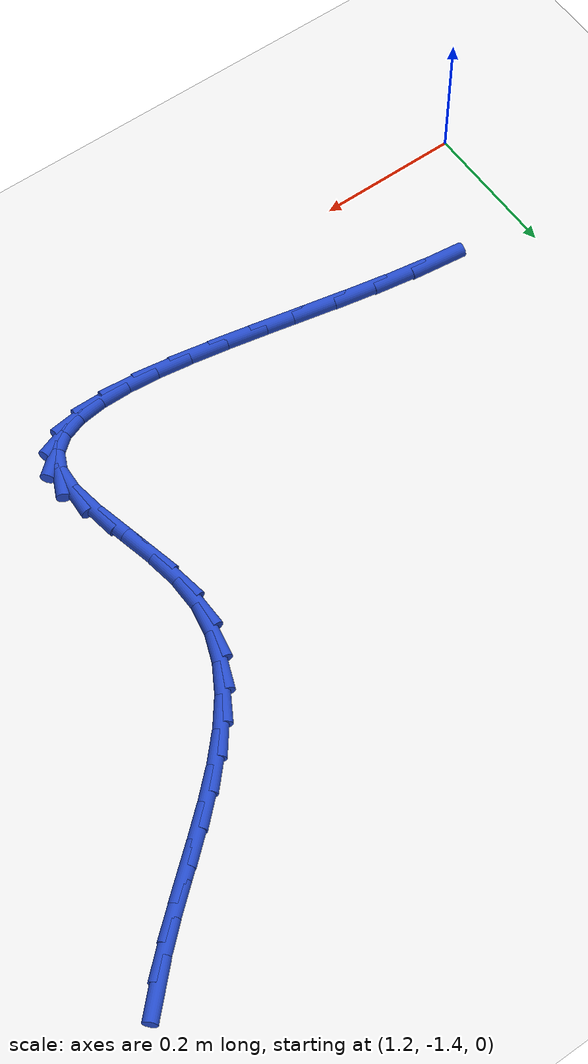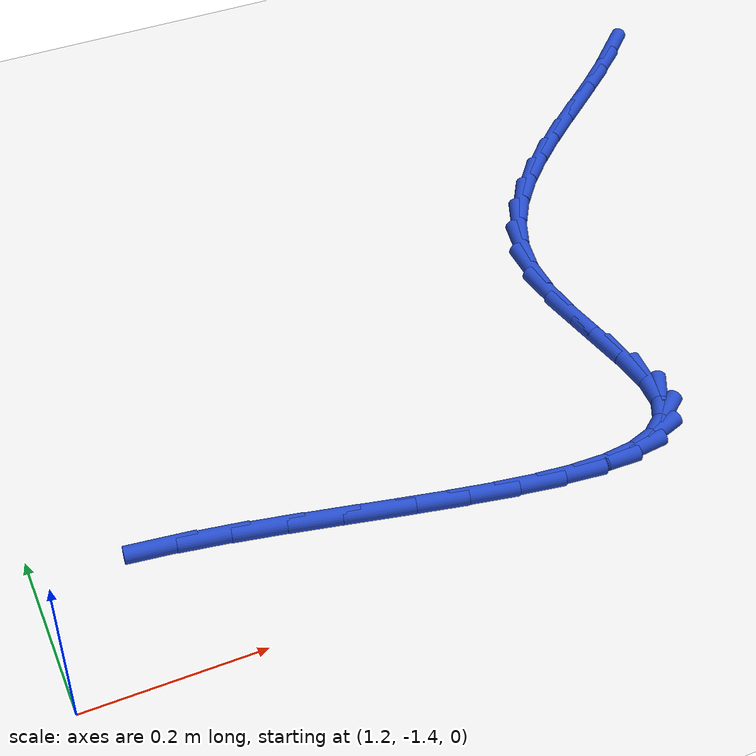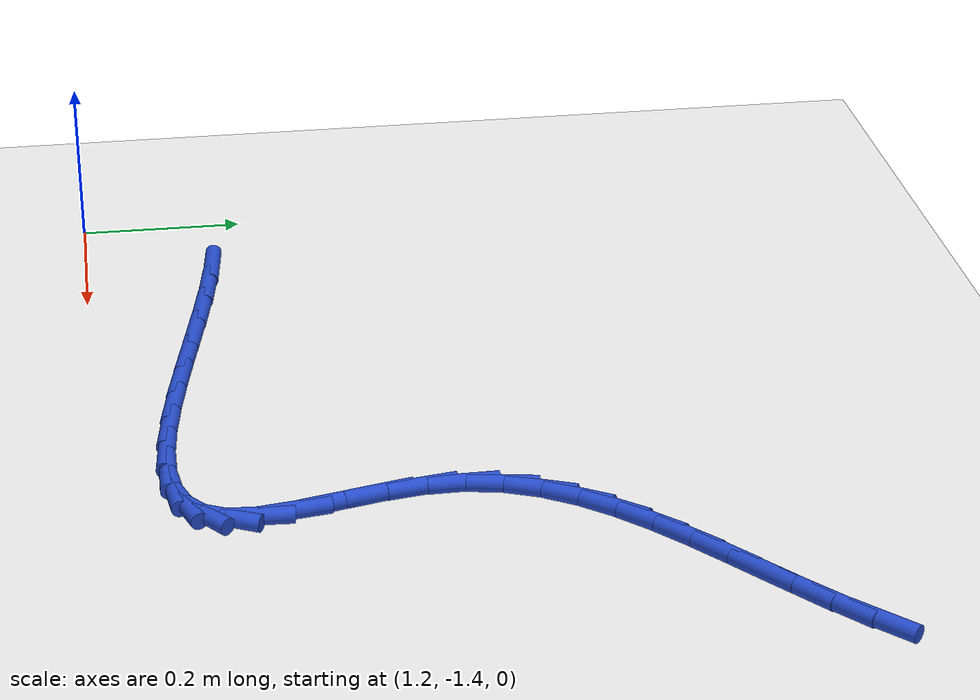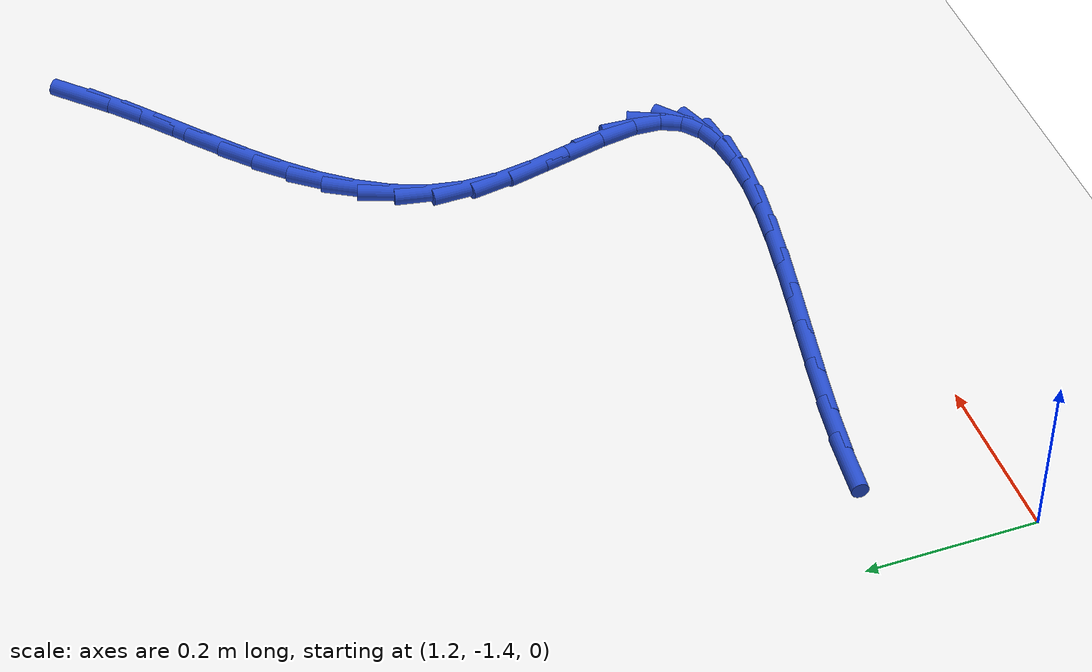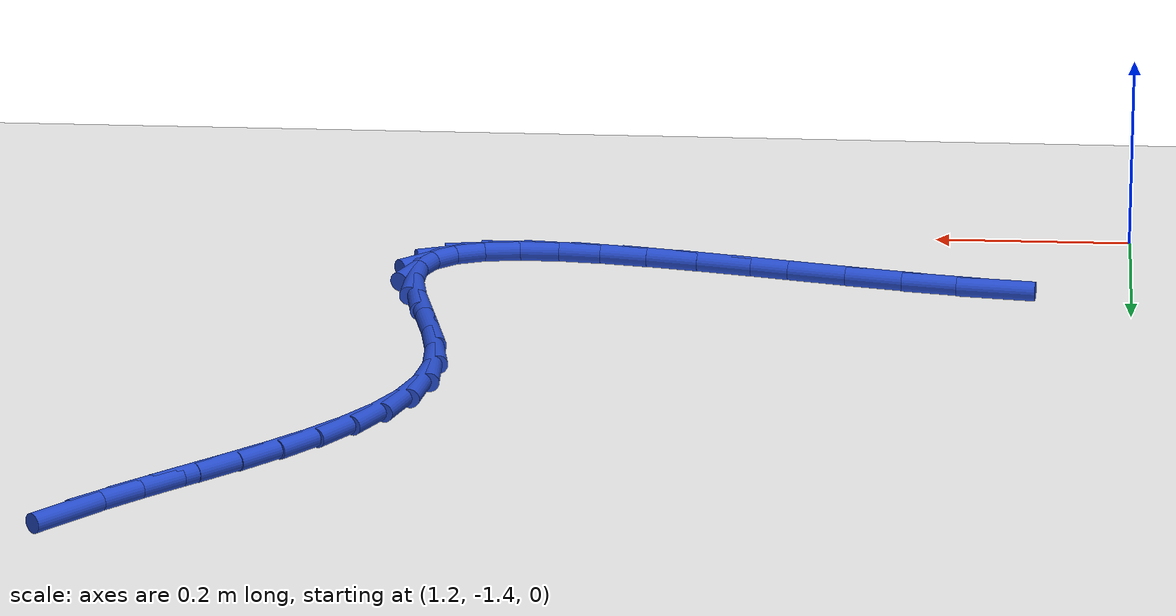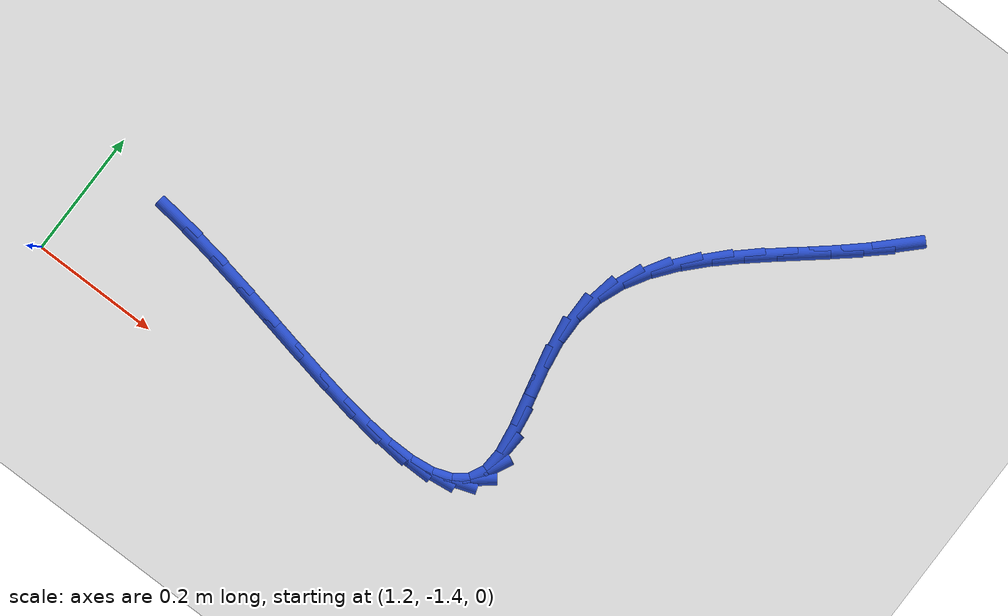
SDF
<sdf version="1.6">
 <world name="default">
  <model name="ground_plane">
   <static>1</static>
   <link name="link">
    <collision name="collision">
     <geometry><plane><normal>0 0 1</normal><size>100 100</size></plane></geometry>
     <surface><friction><ode><mu>100</mu><mu2>50</mu2></ode></friction></surface>
    </collision>
    <visual name="visual">
     <cast_shadows>0</cast_shadows>
     <geometry><plane><normal>0 0 1</normal><size>100 100</size></plane></geometry>
     <material>
      <script><uri>file://media/materials/scripts/gazebo.material</uri><name>Gazebo/WhiteGlow</name></script>
     </material>
    </visual>
   </link>
  </model>
  <model name="line">
   <link name="link_105">
    <pose>2.207349748701378 -0.6270547774261755 0.01 0 1.57 0.7849653476040591</pose>
    <collision name="collision">
     <geometry><cylinder><radius>0.01</radius><length>0.08</length></cylinder></geometry>
    </collision>
    <visual name="visual">
     <material>
      <script><name>Gazebo/Blue</name><uri>file://media/materials/scripts/gazebo.material</uri></script>
     </material>
     <geometry><cylinder><radius>0.01</radius><length>0.08</length></cylinder></geometry>
    </visual>
   </link>
   <link name="link_106">
    <pose>2.174726165482497 -0.6596501328566182 0.01 0 1.57 0.7317744072201849</pose>
    <collision name="collision">
     <geometry><cylinder><radius>0.01</radius><length>0.08</length></cylinder></geometry>
    </collision>
    <visual name="visual">
     <material>
      <script><name>Gazebo/Blue</name><uri>file://media/materials/scripts/gazebo.material</uri></script>
     </material>
     <geometry><cylinder><radius>0.01</radius><length>0.08</length></cylinder></geometry>
    </visual>
   </link>
   <link name="link_107">
    <pose>2.139498633096479 -0.691288617479432 0.01 0 1.57 0.7030848901615386</pose>
    <collision name="collision">
     <geometry><cylinder><radius>0.01</radius><length>0.08</length></cylinder></geometry>
    </collision>
    <visual name="visual">
     <material>
      <script><name>Gazebo/Blue</name><uri>file://media/materials/scripts/gazebo.material</uri></script>
     </material>
     <geometry><cylinder><radius>0.01</radius><length>0.08</length></cylinder></geometry>
    </visual>
   </link>
   <link name="link_108">
    <pose>2.1027955985025386 -0.722397214046576 0.01 0 1.57 0.6968152362238429</pose>
    <collision name="collision">
     <geometry><cylinder><radius>0.01</radius><length>0.08</length></cylinder></geometry>
    </collision>
    <visual name="visual">
     <material>
      <script><name>Gazebo/Blue</name><uri>file://media/materials/scripts/gazebo.material</uri></script>
     </material>
     <geometry><cylinder><radius>0.01</radius><length>0.08</length></cylinder></geometry>
    </visual>
   </link>
   <link name="link_109">
    <pose>2.0657455086598913 -0.75340290531001 0.01 0 1.57 0.7124650124068238</pose>
    <collision name="collision">
     <geometry><cylinder><radius>0.01</radius><length>0.08</length></cylinder></geometry>
    </collision>
    <visual name="visual">
     <material>
      <script><name>Gazebo/Blue</name><uri>file://media/materials/scripts/gazebo.material</uri></script>
     </material>
     <geometry><cylinder><radius>0.01</radius><length>0.08</length></cylinder></geometry>
    </visual>
   </link>
   <link name="link_110">
    <pose>2.029476810527754 -0.7847326740216918 0.01 0 1.57 0.7511243950786164</pose>
    <collision name="collision">
     <geometry><cylinder><radius>0.01</radius><length>0.08</length></cylinder></geometry>
    </collision>
    <visual name="visual">
     <material>
      <script><name>Gazebo/Blue</name><uri>file://media/materials/scripts/gazebo.material</uri></script>
     </material>
     <geometry><cylinder><radius>0.01</radius><length>0.08</length></cylinder></geometry>
    </visual>
   </link>
   <link name="link_111">
    <pose>1.9951179510653427 -0.8168135029335816 0.01 0 1.57 0.8154033188375104</pose>
    <collision name="collision">
     <geometry><cylinder><radius>0.01</radius><length>0.08</length></cylinder></geometry>
    </collision>
    <visual name="visual">
     <material>
      <script><name>Gazebo/Blue</name><uri>file://media/materials/scripts/gazebo.material</uri></script>
     </material>
     <geometry><cylinder><radius>0.01</radius><length>0.08</length></cylinder></geometry>
    </visual>
   </link>
   <link name="link_112">
    <pose>1.9637973772318718 -0.8500723747976382 0.01 0 1.57 0.9090837387449837</pose>
    <collision name="collision">
     <geometry><cylinder><radius>0.01</radius><length>0.08</length></cylinder></geometry>
    </collision>
    <visual name="visual">
     <material>
      <script><name>Gazebo/Blue</name><uri>file://media/materials/scripts/gazebo.material</uri></script>
     </material>
     <geometry><cylinder><radius>0.01</radius><length>0.08</length></cylinder></geometry>
    </visual>
   </link>
   <link name="link_113">
    <pose>1.9366435359865577 -0.8849362723658211 0.01 0 1.57 1.0359531687558896</pose>
    <collision name="collision">
     <geometry><cylinder><radius>0.01</radius><length>0.08</length></cylinder></geometry>
    </collision>
    <visual name="visual">
     <material>
      <script><name>Gazebo/Blue</name><uri>file://media/materials/scripts/gazebo.material</uri></script>
     </material>
     <geometry><cylinder><radius>0.01</radius><length>0.08</length></cylinder></geometry>
    </visual>
   </link>
   <link name="link_114">
    <pose>1.9147848742886158 -0.9218321783900889 0.01 0 1.57 1.1970311399172846</pose>
    <collision name="collision">
     <geometry><cylinder><radius>0.01</radius><length>0.08</length></cylinder></geometry>
    </collision>
    <visual name="visual">
     <material>
      <script><name>Gazebo/Blue</name><uri>file://media/materials/scripts/gazebo.material</uri></script>
     </material>
     <geometry><cylinder><radius>0.01</radius><length>0.08</length></cylinder></geometry>
    </visual>
   </link>
   <link name="link_115">
    <pose>1.8993498390972625 -0.9611870756224027 0.01 0 1.57 1.3862993037774198</pose>
    <collision name="collision">
     <geometry><cylinder><radius>0.01</radius><length>0.08</length></cylinder></geometry>
    </collision>
    <visual name="visual">
     <material>
      <script><name>Gazebo/Blue</name><uri>file://media/materials/scripts/gazebo.material</uri></script>
     </material>
     <geometry><cylinder><radius>0.01</radius><length>0.08</length></cylinder></geometry>
    </visual>
   </link>
   <link name="link_116">
    <pose>1.8914668773717132 -1.0034279468147194 0.01 0 1.57 -1.556544511072082</pose>
    <collision name="collision">
     <geometry><cylinder><radius>0.01</radius><length>0.08</length></cylinder></geometry>
    </collision>
    <visual name="visual">
     <material>
      <script><name>Gazebo/Blue</name><uri>file://media/materials/scripts/gazebo.material</uri></script>
     </material>
     <geometry><cylinder><radius>0.01</radius><length>0.08</length></cylinder></geometry>
    </visual>
   </link>
   <link name="link_117">
    <pose>1.8921149504880403 -1.0488978890808849 0.01 0 1.57 -1.412225004125412</pose>
    <collision name="collision">
     <geometry><cylinder><radius>0.01</radius><length>0.08</length></cylinder></geometry>
    </collision>
    <visual name="visual">
     <material>
      <script><name>Gazebo/Blue</name><uri>file://media/materials/scripts/gazebo.material</uri></script>
     </material>
     <geometry><cylinder><radius>0.01</radius><length>0.08</length></cylinder></geometry>
    </visual>
   </link>
   <link name="link_118">
    <pose>1.8997291889292922 -1.0965124981447845 0.01 0 1.57 -1.3453929344066644</pose>
    <collision name="collision">
     <geometry><cylinder><radius>0.01</radius><length>0.08</length></cylinder></geometry>
    </collision>
    <visual name="visual">
     <material>
      <script><name>Gazebo/Blue</name><uri>file://media/materials/scripts/gazebo.material</uri></script>
     </material>
     <geometry><cylinder><radius>0.01</radius><length>0.08</length></cylinder></geometry>
    </visual>
   </link>
   <link name="link_119">
    <pose>1.9106164837456787 -1.1439930825011992 0.01 0 1.57 -1.343788448238945</pose>
    <collision name="collision">
     <geometry><cylinder><radius>0.01</radius><length>0.08</length></cylinder></geometry>
    </collision>
    <visual name="visual">
     <material>
      <script><name>Gazebo/Blue</name><uri>file://media/materials/scripts/gazebo.material</uri></script>
     </material>
     <geometry><cylinder><radius>0.01</radius><length>0.08</length></cylinder></geometry>
    </visual>
   </link>
   <link name="link_120">
    <pose>1.9210181886169333 -1.1890241735589382 0.01 0 1.57 -1.419052540230441</pose>
    <collision name="collision">
     <geometry><cylinder><radius>0.01</radius><length>0.08</length></cylinder></geometry>
    </collision>
    <visual name="visual">
     <material>
      <script><name>Gazebo/Blue</name><uri>file://media/materials/scripts/gazebo.material</uri></script>
     </material>
     <geometry><cylinder><radius>0.01</radius><length>0.08</length></cylinder></geometry>
    </visual>
   </link>
   <link name="link_121">
    <pose>1.9271756572227867 -1.2292903027268074 0.01 0 1.57 1.5157662019873384</pose>
    <collision name="collision">
     <geometry><cylinder><radius>0.01</radius><length>0.08</length></cylinder></geometry>
    </collision>
    <visual name="visual">
     <material>
      <script><name>Gazebo/Blue</name><uri>file://media/materials/scripts/gazebo.material</uri></script>
     </material>
     <geometry><cylinder><radius>0.01</radius><length>0.08</length></cylinder></geometry>
    </visual>
   </link>
   <link name="link_122">
    <pose>1.9253469849378135 -1.2624871378585003 0.01 0 1.57 1.1227106942761793</pose>
    <collision name="collision">
     <geometry><cylinder><radius>0.01</radius><length>0.08</length></cylinder></geometry>
    </collision>
    <visual name="visual">
     <material>
      <script><name>Gazebo/Blue</name><uri>file://media/materials/scripts/gazebo.material</uri></script>
     </material>
     <geometry><cylinder><radius>0.01</radius><length>0.08</length></cylinder></geometry>
    </visual>
   </link>
   <link name="link_123">
    <pose>1.9133852539751963 -1.2873713196176815 0.01 0 1.57 0.6795314769264146</pose>
    <collision name="collision">
     <geometry><cylinder><radius>0.01</radius><length>0.08</length></cylinder></geometry>
    </collision>
    <visual name="visual">
     <material>
      <script><name>Gazebo/Blue</name><uri>file://media/materials/scripts/gazebo.material</uri></script>
     </material>
     <geometry><cylinder><radius>0.01</radius><length>0.08</length></cylinder></geometry>
    </visual>
   </link>
   <link name="link_124">
    <pose>1.8920329948277521 -1.3046215271364874 0.01 0 1.57 0.33979442888530687</pose>
    <collision name="collision">
     <geometry><cylinder><radius>0.01</radius><length>0.08</length></cylinder></geometry>
    </collision>
    <visual name="visual">
     <material>
      <script><name>Gazebo/Blue</name><uri>file://media/materials/scripts/gazebo.material</uri></script>
     </material>
     <geometry><cylinder><radius>0.01</radius><length>0.08</length></cylinder></geometry>
    </visual>
   </link>
   <link name="link_125">
    <pose>1.8623373881038023 -1.3151190904287298 0.01 0 1.57 0.1244156111197588</pose>
    <collision name="collision">
     <geometry><cylinder><radius>0.01</radius><length>0.08</length></cylinder></geometry>
    </collision>
    <visual name="visual">
     <material>
      <script><name>Gazebo/Blue</name><uri>file://media/materials/scripts/gazebo.material</uri></script>
     </material>
     <geometry><cylinder><radius>0.01</radius><length>0.08</length></cylinder></geometry>
    </visual>
   </link>
   <link name="link_126">
    <pose>1.8253456144116673 -1.3197453395082204 0.01 0 1.57 -0.008411659280644038</pose>
    <collision name="collision">
     <geometry><cylinder><radius>0.01</radius><length>0.08</length></cylinder></geometry>
    </collision>
    <visual name="visual">
     <material>
      <script><name>Gazebo/Blue</name><uri>file://media/materials/scripts/gazebo.material</uri></script>
     </material>
     <geometry><cylinder><radius>0.01</radius><length>0.08</length></cylinder></geometry>
    </visual>
   </link>
   <link name="link_127">
    <pose>1.78210485435967 -1.319381604388771 0.01 0 1.57 -0.09206256556539884</pose>
    <collision name="collision">
     <geometry><cylinder><radius>0.01</radius><length>0.08</length></cylinder></geometry>
    </collision>
    <visual name="visual">
     <material>
      <script><name>Gazebo/Blue</name><uri>file://media/materials/scripts/gazebo.material</uri></script>
     </material>
     <geometry><cylinder><radius>0.01</radius><length>0.08</length></cylinder></geometry>
    </visual>
   </link>
   <link name="link_128">
    <pose>1.7336622885561306 -1.3149092150841928 0.01 0 1.57 -0.14535772827177787</pose>
    <collision name="collision">
     <geometry><cylinder><radius>0.01</radius><length>0.08</length></cylinder></geometry>
    </collision>
    <visual name="visual">
     <material>
      <script><name>Gazebo/Blue</name><uri>file://media/materials/scripts/gazebo.material</uri></script>
     </material>
     <geometry><cylinder><radius>0.01</radius><length>0.08</length></cylinder></geometry>
    </visual>
   </link>
   <link name="link_129">
    <pose>1.6810650976093708 -1.3072095016082987 0.01 0 1.57 -0.17842109518751503</pose>
    <collision name="collision">
     <geometry><cylinder><radius>0.01</radius><length>0.08</length></cylinder></geometry>
    </collision>
    <visual name="visual">
     <material>
      <script><name>Gazebo/Blue</name><uri>file://media/materials/scripts/gazebo.material</uri></script>
     </material>
     <geometry><cylinder><radius>0.01</radius><length>0.08</length></cylinder></geometry>
    </visual>
   </link>
   <link name="link_130">
    <pose>1.6253604621277116 -1.2971637939748988 0.01 0 1.57 -0.19668621668276895</pose>
    <collision name="collision">
     <geometry><cylinder><radius>0.01</radius><length>0.08</length></cylinder></geometry>
    </collision>
    <visual name="visual">
     <material>
      <script><name>Gazebo/Blue</name><uri>file://media/materials/scripts/gazebo.material</uri></script>
     </material>
     <geometry><cylinder><radius>0.01</radius><length>0.08</length></cylinder></geometry>
    </visual>
   </link>
   <link name="link_131">
    <pose>1.567595562719473 -1.2856534221978058 0.01 0 1.57 -0.2029204621627167</pose>
    <collision name="collision">
     <geometry><cylinder><radius>0.01</radius><length>0.08</length></cylinder></geometry>
    </collision>
    <visual name="visual">
     <material>
      <script><name>Gazebo/Blue</name><uri>file://media/materials/scripts/gazebo.material</uri></script>
     </material>
     <geometry><cylinder><radius>0.01</radius><length>0.08</length></cylinder></geometry>
    </visual>
   </link>
   <link name="link_132">
    <pose>1.5088175799929786 -1.2735597162908316 0.01 0 1.57 -0.19816365479531964</pose>
    <collision name="collision">
     <geometry><cylinder><radius>0.01</radius><length>0.08</length></cylinder></geometry>
    </collision>
    <visual name="visual">
     <material>
      <script><name>Gazebo/Blue</name><uri>file://media/materials/scripts/gazebo.material</uri></script>
     </material>
     <geometry><cylinder><radius>0.01</radius><length>0.08</length></cylinder></geometry>
    </visual>
   </link>
   <link name="link_133">
    <pose>1.4500736945565487 -1.2617640062677875 0.01 0 1.57 -0.1820731188608801</pose>
    <collision name="collision">
     <geometry><cylinder><radius>0.01</radius><length>0.08</length></cylinder></geometry>
    </collision>
    <visual name="visual">
     <material>
      <script><name>Gazebo/Blue</name><uri>file://media/materials/scripts/gazebo.material</uri></script>
     </material>
     <geometry><cylinder><radius>0.01</radius><length>0.08</length></cylinder></geometry>
    </visual>
   </link>
   <link name="link_134">
    <pose>1.3924110870185042 -1.2511476221424855 0.01 0 1.57 -0.15291051681293114</pose>
    <collision name="collision">
     <geometry><cylinder><radius>0.01</radius><length>0.08</length></cylinder></geometry>
    </collision>
    <visual name="visual">
     <material>
      <script><name>Gazebo/Blue</name><uri>file://media/materials/scripts/gazebo.material</uri></script>
     </material>
     <geometry><cylinder><radius>0.01</radius><length>0.08</length></cylinder></geometry>
    </visual>
   </link>
   <link name="link_135">
    <pose>1.3368744127831615 -1.2425886689545769 0.01 0 1.57 -0.11529196258769862</pose>
    <collision name="collision">
     <geometry><cylinder><radius>0.01</radius><length>0.08</length></cylinder></geometry>
    </collision>
    <visual name="visual">
     <material>
      <script><name>Gazebo/Blue</name><uri>file://media/materials/scripts/gazebo.material</uri></script>
     </material>
     <geometry><cylinder><radius>0.01</radius><length>0.08</length></cylinder></geometry>
    </visual>
   </link>
  </model>
 </world>
</sdf>
